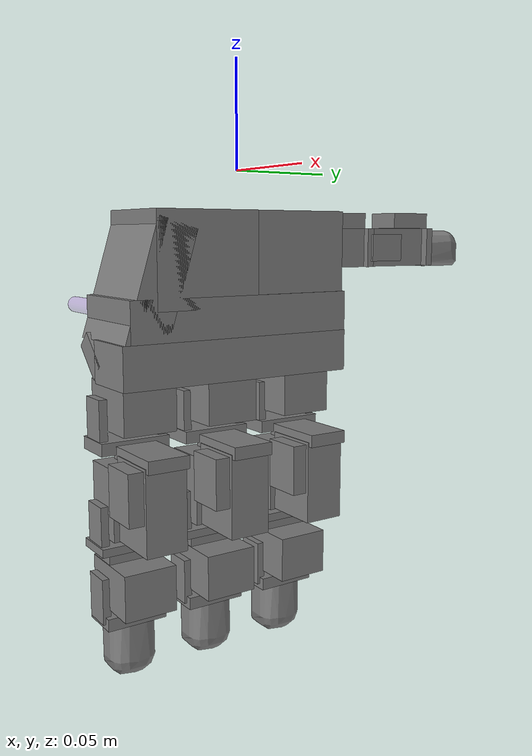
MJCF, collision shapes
<?xml version='1.0' encoding='utf-8'?>
<mujoco model="leap_rh">

  <asset>
    <material name="black" rgba="0.2 0.2 0.2 1" />

    <mesh name="palm" file="meshes/leap_hand/palm_right.stl" scale="0.95 0.95 0.95" />
    <mesh name="base" file="meshes/leap_hand/base.stl" scale="0.95 0.95 0.95" />
    <mesh name="proximal" file="meshes/leap_hand/proximal.stl" scale="0.95 0.95 0.95" />
    <mesh name="medial" file="meshes/leap_hand/medial.stl" scale="0.95 0.95 0.95" />
    <mesh name="distal" file="meshes/leap_hand/distal.stl" scale="0.95 0.95 0.95" />
    <mesh name="tip" file="meshes/leap_hand/tip.stl" scale="0.95 0.95 0.95" />
    <mesh name="thumb_base" file="meshes/leap_hand/thumb_base.stl" scale="0.95 0.95 0.95" />
    <mesh name="thumb_proximal" file="meshes/leap_hand/thumb_proximal.stl" scale="0.95 0.95 0.95" />
    <mesh name="thumb_distal" file="meshes/leap_hand/thumb_distal.stl" scale="0.95 0.95 0.95" />
    <mesh name="thumb_tip" file="meshes/leap_hand/thumb_tip.stl" scale="0.95 0.95 0.95" />
  </asset>

  <default>

   <geom solimp="0.9 0.95 0.001" solref="0.005 1" friction="0.8" />

    <position kp="3.0" />
    <joint damping="1.0" frictionloss="0.1" />

    <default class="visual">
      <geom group="1" type="mesh" contype="0" conaffinity="0" density="0" material="black" />
    </default>
    <default class="tip">
      <geom type="mesh" mesh="tip" friction="0.5" />
    </default>
    <default class="thumb_tip">
      <geom type="mesh" mesh="thumb_tip" friction="0.5" />
    </default>

    <default class="mcp">
      <joint pos="0.000000 0.000000 0.000000" axis="0 0 -1" limited="true" range="-0.314 2.23" damping="0.1" />
      <position ctrlrange="-0.314 2.23" />
    </default>
    <default class="rot">
      <joint pos="0.000000 0.000000 0.000000" axis="0 0 -1" limited="true" range="-1.047 1.047" damping="0.1" />
      <position ctrlrange="-1.047 1.047" />
    </default>
    <default class="pip">
      <joint pos="0.000000 0.000000 0.000000" axis="0 0 -1" limited="true" range="-0.506 1.885" damping="0.1" />
      <position ctrlrange="-0.506 1.885" />
    </default>
    <default class="dip">
      <joint pos="0.000000 0.000000 0.000000" axis="0 0 -1" limited="true" range="-0.366 2.042" damping="0.1" />
      <position ctrlrange="-0.366 2.042" />
    </default>
    <default class="thumb_cmc">
      <joint pos="0.000000 0.000000 0.000000" axis="0 0 -1" limited="true" range="-0.349 2.094" damping="0.1" />
      <position ctrlrange="-0.349 2.094" />
    </default>
    <default class="thumb_axl">
      <joint pos="0.000000 0.000000 0.000000" axis="0 0 -1" limited="true" range="-0.349 2.094" damping="0.1" />
      <position ctrlrange="-0.349 2.094" />
    </default>
    <default class="thumb_mcp">
      <joint pos="0.000000 0.000000 0.000000" axis="0 0 -1" limited="true" range="-0.47 2.443" damping="0.1" />
      <position ctrlrange="-2.443 2.443" />
    </default>
    <default class="thumb_ipl">
      <joint pos="0.000000 0.000000 0.000000" axis="0 0 -1" limited="true" range="-1.34 1.88" damping="0.1" />
      <position ctrlrange="-1.34 1.88" />
    </default>
  </default>

  <contact>

    <exclude body1="palm" body2="if_bs" />
    <exclude body1="palm" body2="mf_bs" />
    <exclude body1="palm" body2="rf_bs" />
    <exclude body1="palm" body2="th_mp" />

    <exclude body1="palm" body2="if_px" />
    <exclude body1="palm" body2="mf_px" />
    <exclude body1="palm" body2="rf_px" />
    <exclude body1="palm" body2="th_bs" />

    <exclude body1="palm" body2="if_md" />
    <exclude body1="palm" body2="mf_md" />
    <exclude body1="palm" body2="rf_md" />
    <exclude body1="palm" body2="th_px" />

    <exclude body1="if_bs" body2="mf_bs" />
    <exclude body1="if_bs" body2="rf_bs" />
    <exclude body1="mf_bs" body2="rf_bs" />

    <exclude body1="th_mp" body2="if_bs" />
    <exclude body1="th_mp" body2="mf_bs" />
    <exclude body1="th_mp" body2="rf_bs" />

  </contact>

  <actuator>

    <position name="if_mcp_act" joint="if_mcp" class="mcp" />
    <position name="if_rot_act" joint="if_rot" class="rot" />
    <position name="if_pip_act" joint="if_pip" class="pip" />
    <position name="if_dip_act" joint="if_dip" class="dip" />

    <position name="mf_mcp_act" joint="mf_mcp" class="mcp" />
    <position name="mf_rot_act" joint="mf_rot" class="rot" />
    <position name="mf_pip_act" joint="mf_pip" class="pip" />
    <position name="mf_dip_act" joint="mf_dip" class="dip" />

    <position name="rf_mcp_act" joint="rf_mcp" class="mcp" />
    <position name="rf_rot_act" joint="rf_rot" class="rot" />
    <position name="rf_pip_act" joint="rf_pip" class="pip" />
    <position name="rf_dip_act" joint="rf_dip" class="dip" />

    <position name="th_cmc_act" joint="th_cmc" class="thumb_cmc" />
    <position name="th_axl_act" joint="th_axl" class="thumb_axl" />
    <position name="th_mcp_act" joint="th_mcp" class="thumb_mcp" />
    <position name="th_ipl_act" joint="th_ipl" class="thumb_ipl" />
  </actuator>

  <sensor>
    <force name="force_ee" site="ft_frame" />
    <torque name="torque_ee" site="ft_frame" />

    <jointpos name="if_mcp_sensor" joint="if_mcp" />
    <jointpos name="if_rot_sensor" joint="if_rot" />
    <jointpos name="if_pip_sensor" joint="if_pip" />
    <jointpos name="if_dip_sensor" joint="if_dip" />

    <jointpos name="mf_mcp_sensor" joint="mf_mcp" />
    <jointpos name="mf_rot_sensor" joint="mf_rot" />
    <jointpos name="mf_pip_sensor" joint="mf_pip" />
    <jointpos name="mf_dip_sensor" joint="mf_dip" />

    <jointpos name="rf_mcp_sensor" joint="rf_mcp" />
    <jointpos name="rf_rot_sensor" joint="rf_rot" />
    <jointpos name="rf_pip_sensor" joint="rf_pip" />
    <jointpos name="rf_dip_sensor" joint="rf_dip" />

    <jointpos name="th_cmc_sensor" joint="th_cmc" />
    <jointpos name="th_axl_sensor" joint="th_axl" />
    <jointpos name="th_mcp_sensor" joint="th_mcp" />
    <jointpos name="th_ipl_sensor" joint="th_ipl" />
  </sensor>

  <worldbody>
    <body name="palm" pos="0.000000 0.028500 -0.114000" quat="0.7071068 0 0.7071068 0">

      <site name="ft_frame" pos="0.000000 -0.057000 0.000000" size="0.01 0.01 0.01" rgba="1 0 0 0" type="sphere" group="1" />
      <site name="grip_site" pos="0.050000 -0.012000 0.00000" size="0.01 0.01 0.01" rgba="1 0 0 0" type="sphere" group="1" />
      <site name="grip_site_cylinder" pos="-0.04000 -0.03200 -0.092000" quat="1 0 0 0" size="0.005 .1" rgba=".627 .125 .941 .2" type="cylinder" group="1" />
      <inertial pos="-0.049542 -0.042914 -0.010227" quat="0.565586 0.427629 -0.574956 0.408254" mass="0.237" diaginertia="0.000407345 0.000304759 0.000180736" />
      <geom name="palm_visual" pos="-0.019000 0.024462 -0.032965" quat="1 0 0 0" class="visual" mesh="palm" />
      <geom name="palm_collision_1" size="0.011 0.013 0.017" pos="-0.008550 0.007600 -0.010450" type="box" />
      <geom name="palm_collision_2" size="0.011 0.013 0.017" pos="-0.008550 -0.035150 -0.010450" type="box" />
      <geom name="palm_collision_3" size="0.011 0.013 0.017" pos="-0.008550 -0.077900 -0.010450" type="box" />
      <geom name="palm_collision_4" size="0.029 0.01 0.023" pos="-0.062700 -0.074100 -0.010925" quat="0.989016 0 0 -0.147806" type="box" />
      <geom name="palm_collision_5" size="0.01 0.06 0.015" pos="-0.028500 -0.033250 -0.002850" type="box" />
      <geom name="palm_collision_6" size="0.005 0.06 0.01" pos="-0.030400 -0.033250 -0.022800" quat="0.923956 0 0.382499 0" type="box" />
      <geom name="palm_collision_7" size="0.012 0.058 0.023" pos="-0.045600 -0.031350 -0.010925" type="box" />
      <geom name="palm_collision_8" size="0.022 0.026 0.023" pos="-0.074100 -0.050350 -0.010925" type="box" />
      <geom name="palm_collision_9" size="0.002 0.018 0.017" pos="-0.093100 -0.008550 -0.005700" type="box" />
      <geom name="palm_collision_10" size="0.022 0.028 0.002" pos="-0.074100 -0.002850 0.009500" type="box" />

      <body name="if_bs" pos="-0.006650 0.021850 -0.017765" quat="0.500003 0.5 0.5 -0.499997">
        <inertial pos="-0.022516 0.033882 0.016359" quat="0.388092 0.677951 -0.247713 0.573067" mass="0.044" diaginertia="1.74972e-05 1.61504e-05 7.21342e-06" />
        <joint name="if_mcp" class="mcp" />
        <geom name="if_bs_visual" pos="0.007980 0.007315 0.013917" quat="1 0 0 0" class="visual" mesh="base" />
        <geom name="if_bs_collision_1" size="0.01 0.003 0.017" pos="0.000000 0.017100 0.013965" type="box" />
        <geom name="if_bs_collision_2" size="0.014 0.02 0.01" pos="-0.025650 0.039900 0.014250" type="box" />
        <geom name="if_bs_collision_3" size="0.017 0.003 0.01" pos="-0.024890 0.019000 0.013870" type="box" />
        <geom name="if_bs_collision_4" size="0.01 0.012 0.004" pos="-0.028025 0.033250 0.027550" type="box" />
        <geom name="if_bs_collision_5" size="0.007 0.01 0.002" pos="0.000000 0.004750 0.028500" type="box" />
        <geom name="if_bs_collision_6" size="0.007 0.01 0.002" pos="0.000000 0.004750 -0.000950" type="box" />

        <body name="if_px" pos="-0.011590 0.036195 0.013775" quat="0.500003 -0.5 -0.499997 0.5">
          <inertial pos="0.0075 -0.0002 -0.011" quat="0 0.707107 0 0.707107" mass="0.032" diaginertia="4.8853e-06 4.3733e-06 3.0933e-06" />
          <joint name="if_rot" class="rot" />
          <geom name="if_px_visual" pos="0.009120 0.000190 0.000665" quat="0.500003 -0.5 -0.5 -0.499997" class="visual" mesh="proximal" />
          <geom name="if_px_collision" size="0.017 0.013 0.011" pos="0.007125 -0.000190 -0.010450" type="box" />

          <body name="if_md" pos="0.014250 0.013585 -0.012350" quat="0.500003 0.5 -0.5 0.499997">
            <inertial pos="0.0054215 -0.029148 0.015" quat="0.687228 0.687228 0.166487 0.166487" mass="0.037" diaginertia="8.28004e-06 8.1598e-06 5.39516e-06" />
            <joint name="if_pip" class="pip" />
            <geom name="if_md_visual" pos="0.020045 -0.007980 0.009215" quat="2.67949e-08 -1 0 0" class="visual" mesh="medial" />
            <geom name="if_md_collision_1" size="0.008 0.003 0.013" pos="0.000000 -0.019000 0.014250" type="box" />
            <geom name="if_md_collision_2" size="0.01 0.002 0.017" pos="0.000000 -0.015200 0.014250" type="box" />
            <geom name="if_md_collision_3" size="0.007 0.01 0.002" pos="0.000000 -0.004275 0.028500" type="box" />
            <geom name="if_md_collision_4" size="0.007 0.01 0.002" pos="0.000000 -0.004275 0.000000" type="box" />
            <geom name="if_md_collision_5" size="0.017 0.011 0.013" pos="0.007125 -0.033250 0.014250" type="box" />

            <body name="if_ds" pos="0.000000 -0.034295 0.000190">
              <inertial pos="-0.0008794 -0.027019 0.014594" quat="0.702905 0.710643 -0.0212937 -0.0214203" mass="0.016" diaginertia="3.71863e-06 3.02396e-06 1.6518e-06" />
              <joint name="if_dip" class="dip" />
              <geom name="if_ds_visual" pos="0.012540 -0.005795 0.013680" quat="2.67949e-08 1 0 0" class="visual" mesh="distal" />
              <geom name="if_ds_collision_1" size="0.01 0.003 0.015" pos="0.000000 -0.016150 0.014250" type="box" />
              <geom name="if_ds_collision_2" size="0.007 0.011 0.002" pos="0.000000 -0.005700 0.028500" type="box" />
              <geom name="if_ds_collision_3" size="0.007 0.011 0.002" pos="0.000000 -0.005700 -0.000950" type="box" />

              <geom name="if_tip" class="tip" />
            </body>

          </body>
        </body>
      </body>

      <body name="mf_bs" pos="-0.006745 -0.021280 -0.017765" quat="0.500003 0.5 0.5 -0.499997">
        <inertial pos="-0.022516 0.033882 0.016359" quat="0.388092 0.677951 -0.247713 0.573067" mass="0.044" diaginertia="1.74972e-05 1.61504e-05 7.21342e-06" />
        <joint name="mf_mcp" class="mcp" />
        <geom name="mf_bs_visual" pos="0.007980 0.007315 0.013917" quat="1 0 0 0" class="visual" mesh="base" />
        <geom name="mf_bs_collision_1" size="0.01 0.003 0.017" pos="0.000000 0.017100 0.013965" type="box" />
        <geom name="mf_bs_collision_2" size="0.014 0.02 0.01" pos="-0.025650 0.039900 0.014250" type="box" />
        <geom name="mf_bs_collision_3" size="0.017 0.003 0.01" pos="-0.024890 0.019000 0.013870" type="box" />
        <geom name="mf_bs_collision_4" size="0.01 0.012 0.004" pos="-0.028025 0.033250 0.027550" type="box" />
        <geom name="mf_bs_collision_5" size="0.007 0.01 0.002" pos="0.000000 0.004750 0.028500" type="box" />
        <geom name="mf_bs_collision_6" size="0.007 0.01 0.002" pos="0.000000 0.004750 -0.000950" type="box" />

        <body name="mf_px" pos="-0.011590 0.036195 0.013775" quat="0.500003 -0.5 -0.499997 0.5">
          <inertial pos="0.0075 -0.0002 -0.011" quat="0 0.707107 0 0.707107" mass="0.032" diaginertia="4.8853e-06 4.3733e-06 3.0933e-06" />
          <joint name="mf_rot" class="rot" />
          <geom name="mf_px_visual" pos="0.009120 0.000285 0.000665" quat="0.500003 -0.5 -0.5 -0.499997" class="visual" mesh="proximal" />
          <geom name="mf_px_collision" size="0.017 0.013 0.011" pos="0.007125 -0.000190 -0.010450" type="box" />

          <body name="mf_md" pos="0.014250 0.013585 -0.012350" quat="0.500003 0.5 -0.5 0.499997">
            <inertial pos="0.0054215 -0.029148 0.015" quat="0.687228 0.687228 0.166487 0.166487" mass="0.037" diaginertia="8.28004e-06 8.1598e-06 5.39516e-06" />
            <joint name="mf_pip" class="pip" />
            <geom name="mf_md_visual" pos="0.020045 -0.007980 0.009215" quat="1.32679e-06 -1 0 0" class="visual" mesh="medial" />
            <geom name="mf_md_collision_1" size="0.008 0.003 0.013" pos="0.000000 -0.019000 0.014250" type="box" />
            <geom name="mf_md_collision_2" size="0.01 0.002 0.017" pos="0.000000 -0.015200 0.014250" type="box" />
            <geom name="mf_md_collision_3" size="0.007 0.01 0.002" pos="0.000000 -0.004275 0.028500" type="box" />
            <geom name="mf_md_collision_4" size="0.007 0.01 0.002" pos="0.000000 -0.004275 0.000000" type="box" />
            <geom name="mf_md_collision_5" size="0.017 0.011 0.013" pos="0.007125 -0.033250 0.014250" type="box" />

            <body name="mf_ds" pos="0.000000 -0.034295 0.000190">
              <inertial pos="-0.0008794 -0.027019 0.014594" quat="0.702905 0.710643 -0.0212937 -0.0214203" mass="0.016" diaginertia="3.71863e-06 3.02396e-06 1.6518e-06" />
              <joint name="mf_dip" class="dip" />
              <geom name="mf_ds_visual" pos="0.012540 -0.005795 0.013775" quat="1.32679e-06 1 0 0" class="visual" mesh="distal" />
              <geom name="mf_ds_collision_1" size="0.01 0.003 0.015" pos="0.000000 -0.016150 0.014250" type="box" />
              <geom name="mf_ds_collision_2" size="0.007 0.011 0.002" pos="0.000000 -0.005700 0.028500" type="box" />
              <geom name="mf_ds_collision_3" size="0.007 0.011 0.002" pos="0.000000 -0.005700 -0.000950" type="box" />

              <geom name="mf_tip" class="tip" />
            </body>

          </body>
        </body>
      </body>

      <body name="rf_bs" pos="-0.006735 -0.064410 -0.017765" quat="0.500003 0.5 0.5 -0.499997">
        <inertial pos="-0.022516 0.033882 0.016359" quat="0.388092 0.677951 -0.247713 0.573067" mass="0.044" diaginertia="1.74972e-05 1.61504e-05 7.21342e-06" />
        <joint name="rf_mcp" class="mcp" />
        <geom name="rf_bs_visual" pos="0.007980 0.007315 0.013917" quat="1 0 0 0" class="visual" mesh="base" />
        <geom name="rf_bs_collision_1" size="0.01 0.003 0.017" pos="0.000000 0.017100 0.013965" type="box" />
        <geom name="rf_bs_collision_2" size="0.014 0.02 0.01" pos="-0.025650 0.039900 0.014250" type="box" />
        <geom name="rf_bs_collision_3" size="0.017 0.003 0.01" pos="-0.024890 0.019000 0.013870" type="box" />
        <geom name="rf_bs_collision_4" size="0.01 0.012 0.004" pos="-0.028025 0.033250 0.027550" type="box" />
        <geom name="rf_bs_collision_5" size="0.007 0.01 0.002" pos="0.000000 0.004750 0.028500" type="box" />
        <geom name="rf_bs_collision_6" size="0.007 0.01 0.002" pos="0.000000 0.004750 -0.000950" type="box" />

        <body name="rf_px" pos="-0.011590 0.036195 0.013775" quat="0.500003 -0.5 -0.499997 0.5">
          <inertial pos="0.0075 -0.0002 -0.011" quat="0 0.707107 0 0.707107" mass="0.032" diaginertia="4.8853e-06 4.3733e-06 3.0933e-06" />
          <joint name="rf_rot" class="rot" />
          <geom name="rf_px_visual" pos="0.009120 0.000285 0.000665" quat="0.500003 -0.5 -0.5 -0.499997" class="visual" mesh="proximal" />
          <geom name="rf_px_collision" size="0.017 0.013 0.011" pos="0.007125 -0.000190 -0.010450" type="box" />

          <body name="rf_md" pos="0.014250 0.013585 -0.012350" quat="0.500003 0.5 -0.5 0.499997">
            <inertial pos="0.0054215 -0.029148 0.015" quat="0.687228 0.687228 0.166487 0.166487" mass="0.037" diaginertia="8.28004e-06 8.1598e-06 5.39516e-06" />
            <joint name="rf_pip" class="pip" />
            <geom name="rf_md_visual" pos="0.020045 -0.007980 0.009215" quat="1.32679e-06 -1 0 0" class="visual" mesh="medial" />
            <geom name="rf_md_collision_1" size="0.008 0.003 0.013" pos="0.000000 -0.019000 0.014250" type="box" />
            <geom name="rf_md_collision_2" size="0.01 0.002 0.017" pos="0.000000 -0.015200 0.014250" type="box" />
            <geom name="rf_md_collision_3" size="0.007 0.01 0.002" pos="0.000000 -0.004275 0.028500" type="box" />
            <geom name="rf_md_collision_4" size="0.007 0.01 0.002" pos="0.000000 -0.004275 0.000000" type="box" />
            <geom name="rf_md_collision_5" size="0.017 0.011 0.013" pos="0.007125 -0.033250 0.014250" type="box" />

            <body name="rf_ds" pos="0.000000 -0.034285 0.000190">
              <inertial pos="-0.0008794 -0.027019 0.014594" quat="0.702905 0.710643 -0.0212937 -0.0214203" mass="0.016" diaginertia="3.71863e-06 3.02396e-06 1.6518e-06" />
              <joint name="rf_dip" class="dip" />
              <geom name="rf_ds_visual" pos="0.012540 -0.005795 0.013775" quat="1.32679e-06 1 0 0" class="visual" mesh="distal" />
              <geom name="rf_ds_collision_1" size="0.01 0.003 0.015" pos="0.000000 -0.016150 0.014250" type="box" />
              <geom name="rf_ds_collision_2" size="0.007 0.011 0.002" pos="0.000000 -0.005700 0.028500" type="box" />
              <geom name="rf_ds_collision_3" size="0.007 0.011 0.002" pos="0.000000 -0.005700 -0.000950" type="box" />

              <geom name="rf_tip" class="tip" />
            </body>

          </body>
        </body>
      </body>

      <body name="th_mp" pos="-0.065835 -0.001140 -0.020520" quat="0.707109 0 0.707105 0">
        <inertial pos="0.0075 -0.0002 -0.011" quat="0 0.707107 0 0.707107" mass="0.032" diaginertia="4.8853e-06 4.3733e-06 3.0933e-06" />
        <joint name="th_cmc" class="thumb_cmc" />
        <geom name="th_mp_visual" pos="-0.005035 0.000285 0.000741" quat="0.500003 -0.5 -0.5 -0.499997" class="visual" mesh="proximal" />
        <geom name="th_mp_collision" size="0.017 0.013 0.011" pos="-0.007125 -0.000190 -0.010450" type="box" />

        <body name="th_bs" pos="0.000000 0.013585 -0.012350" quat="0.500003 0.5 -0.5 0.499997">
          <inertial pos="0 0 -0.0070806" quat="0.707107 0.707107 0 0" mass="0.003" diaginertia="6.1932e-07 5.351e-07 2.1516e-07" />
          <joint name="th_axl" class="thumb_axl" />
          <geom name="th_bs_visual" pos="0.011362 0.000000 -0.015010" quat="0.707109 0.707105 0 0" class="visual" mesh="thumb_base" />
          <geom name="th_bs_collision_1" size="0.009 0.0165 0.002" pos="0.000000 0.000000 -0.001425" type="box" />
          <geom name="th_bs_collision_2" size="0.007 0.002 0.01" pos="0.000000 -0.014250 -0.012350" type="box" />
          <geom name="th_bs_collision_3" size="0.007 0.002 0.01" pos="0.000000 0.014250 -0.012350" type="box" />

          <body name="th_px" pos="0.000000 0.013775 -0.016150" quat="0.707109 -0.707105 0 0">
            <inertial pos="-0.0020593 0.015912 -0.013733" quat="0.698518 0.697382 -0.104933 0.121324" mass="0.038" diaginertia="9.87104e-06 9.32653e-06 4.36203e-06" />
            <joint name="th_mcp" class="thumb_mcp" />
            <geom name="th_px_visual" pos="0.041705 0.055005 -0.008170" quat="1 0 0 0" class="visual" mesh="thumb_proximal" />
            <geom name="th_px_collision_1" size="0.01 0.02 0.012" pos="0.000000 0.009975 -0.013300" type="box" />
            <geom name="th_px_collision_2" size="0.01 0.002 0.016" pos="0.000000 0.029450 -0.014250" type="box" />
            <geom name="th_px_collision_3" size="0.007 0.01 0.002" pos="0.000000 0.039900 0.000950" type="box" />
            <geom name="th_px_collision_4" size="0.007 0.01 0.002" pos="0.000000 0.039900 -0.027550" type="box" />
            <geom name="th_px_collision_5" size="0.005 0.012 0.009" pos="-0.012825 0.016625 -0.011073" type="box" />

            <body name="th_ds" pos="0.000000 0.044270 0.000190" quat="1.32679e-06 0 0 1">
              <inertial pos="0.00096191 -0.024203 -0.014419" quat="0.35287 0.311272 -0.632839 0.614904" mass="0.049" diaginertia="2.08591e-05 2.0402e-05 4.71335e-06" />
              <joint name="th_ipl" class="thumb_ipl" />
              <geom name="th_ds_visual" pos="0.059375 0.074480 0.046455" quat="1 0 0 0" class="visual" mesh="thumb_distal" />
              <geom name="th_ds_collision_1" size="0.01 0.018 0.012" pos="0.000000 -0.008075 -0.014250" type="box" />
              <geom name="th_ds_collision_2" size="0.01 0.002 0.015" pos="0.000000 -0.027550 -0.013300" type="box" />
              <geom name="th_ds_collision_3" size="0.004 0.012 0.009" pos="0.014250 -0.016625 -0.010925" type="box" />

              <geom name="th_tip" class="thumb_tip" />
            </body>

          </body>
        </body>
      </body>

    </body>
  </worldbody>
</mujoco>
